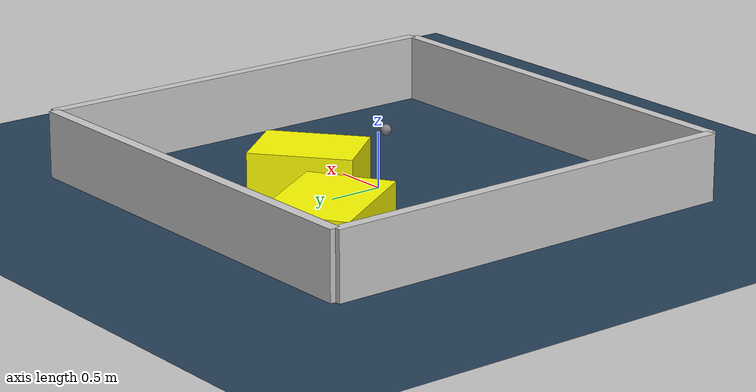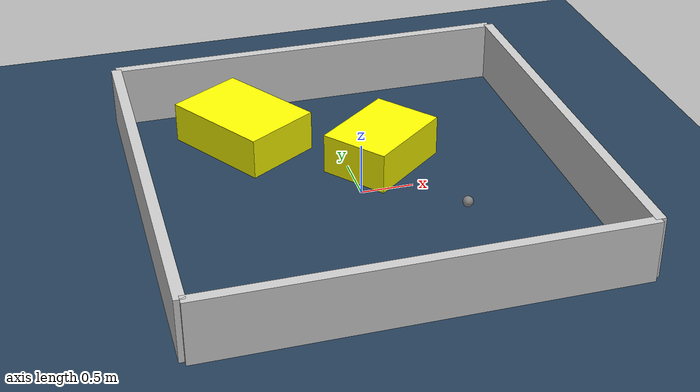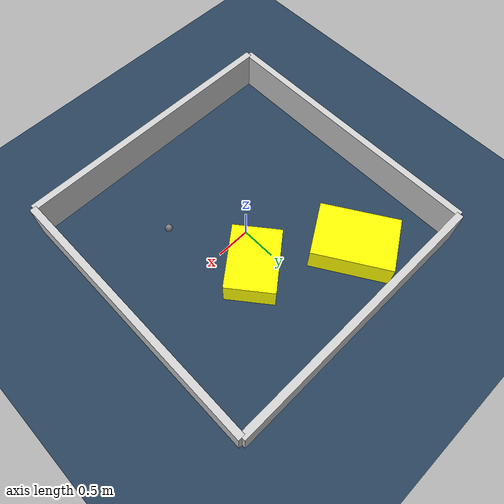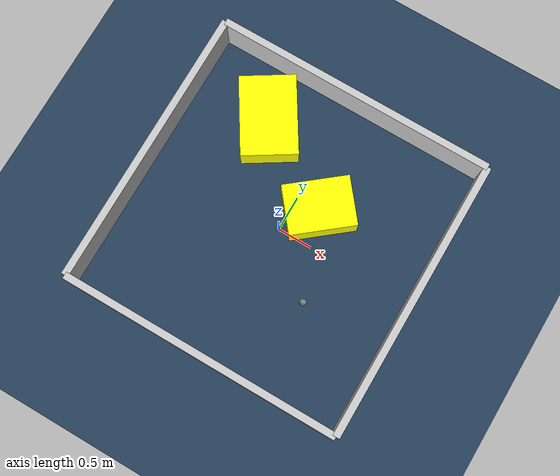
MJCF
<?xml version="1.0" ?>
<mujoco model="generated_environment">
  <option timestep="0.01" integrator="RK4" cone="elliptic"/>
  <default>
    <geom density="1"/>
  </default>
  <asset>
    <texture builtin="gradient" height="3072" rgb1="0.3 0.5 0.7" rgb2="0 0 0" type="skybox" width="512"/>
    <texture builtin="checker" height="300" mark="edge" markrgb="0.8 0.8 0.8" name="groundplane" rgb1="0.2 0.3 0.4" rgb2="0.1 0.2 0.3" type="2d" width="300"/>
    <material name="groundplane" reflectance="0.2" texrepeat="5 5" texture="groundplane" texuniform="true"/>
    <material name="robot" rgba="0.0 1.0 0.0 1"/>
  </asset>
  <worldbody>
    <light dir="0 0 -1" directional="true" pos="0 0 1.5"/>
    <geom condim="4" friction="1.0 0.005 0.001" material="groundplane" name="floor" size="0 0 0.05" type="plane"/>
    <body name="walls">
      <geom name="wall_1" condim="4" pos="-2.0 0.0 0.3" rgba="0.800000011920929 0.800000011920929 0.800000011920929 1.0" size="0.05 2.0 0.3" type="box"/>
      <geom name="wall_2" condim="4" pos="2.0 0.0 0.3" rgba="0.800000011920929 0.800000011920929 0.800000011920929 1.0" size="0.05 2.0 0.3" type="box"/>
      <geom name="wall_3" condim="4" pos="0.0 -2.0 0.3" rgba="0.800000011920929 0.800000011920929 0.800000011920929 1.0" size="2.0 0.05 0.3" type="box"/>
      <geom name="wall_4" condim="4" pos="0.0 2.0 0.3" rgba="0.800000011920929 0.800000011920929 0.800000011920929 1.0" size="2.0 0.05 0.3" type="box"/>
    </body>
    <body name="robot">
      <joint name="joint_x" type="slide" pos="0 0 0" axis="1 0 0"/>
      <joint name="joint_y" type="slide" pos="0 0 0" axis="0 1 0"/>
      <geom name="robot" type="sphere" pos="0.7915073187176178 -0.7158920158503648 0.2" size="0.05" mass="5." friction="1.0 0.005 0.0001" condim="4"/>
      <site name="sensor_ball"/>
    </body>
    <body name="obstacle_1_movable">
      <geom name="obstacle_1_movable" condim="4" pos="-0.8720536992191797 1.2147357305439381 0.2" euler="0 0 32.00674003126264" friction="1.0 0.005 0.001" rgba="1 1 0 1" size="0.3922667780096293 0.5595260611878603 0.2" type="box" mass="0.1"/>
      <joint type="free"/>
    </body>
    <body name="obstacle_2_movable">
      <geom name="obstacle_2_movable" condim="4" pos="0.33672644521685124 0.4889338592947414 0.2" euler="0 0 218.9580791365639" friction="1.0 0.005 0.001" rgba="1 1 0 1" size="0.4622309836804637 0.3456159487630929 0.2" type="box" mass="0.1"/>
      <joint type="free"/>
    </body>
  </worldbody>
  <actuator>
    <motor name="actuator_x" joint="joint_x" gear="1" ctrlrange="-1 1"/>
    <motor name="actuator_y" joint="joint_y" gear="1" ctrlrange="-1 1"/>
  </actuator>
</mujoco>
